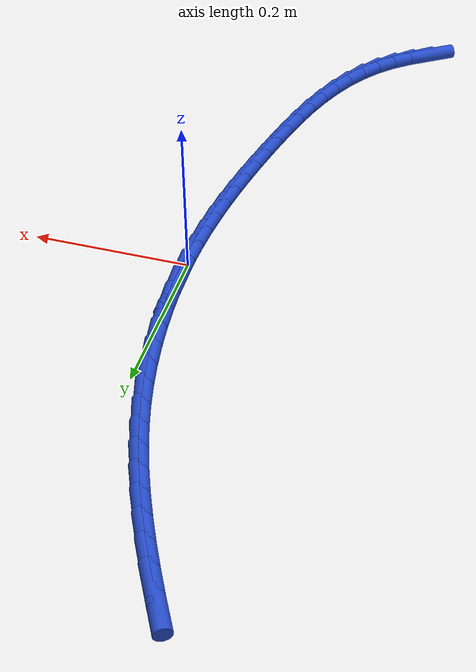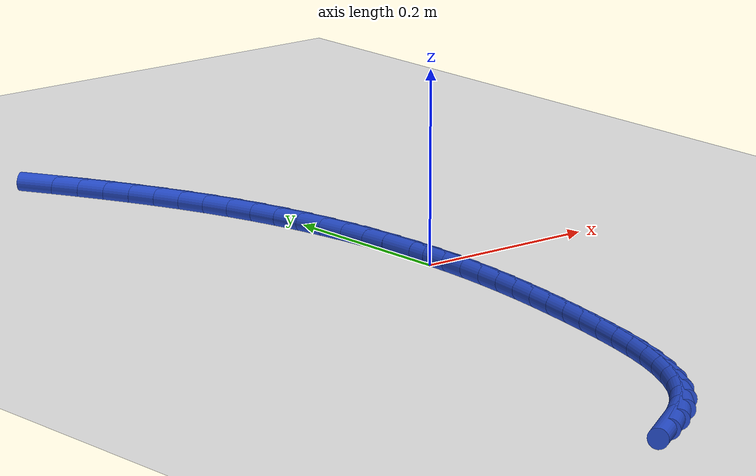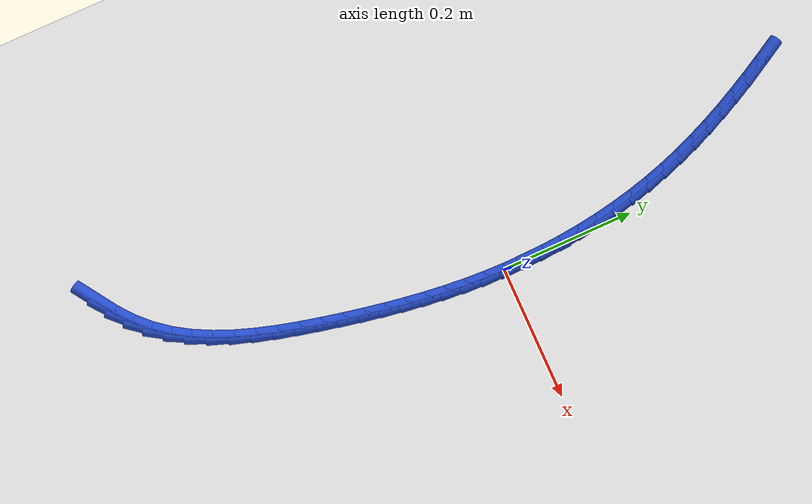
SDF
<sdf version="1.6">
 <world name="default">
  <model name="ground_plane">
   <static>1</static>
   <link name="link">
    <collision name="collision">
     <geometry><plane><normal>0 0 1</normal><size>100 100</size></plane></geometry>
     <surface><friction><ode><mu>100</mu><mu2>50</mu2></ode></friction></surface>
    </collision>
    <visual name="visual">
     <cast_shadows>0</cast_shadows>
     <geometry><plane><normal>0 0 1</normal><size>100 100</size></plane></geometry>
     <material>
      <script><uri>file://media/materials/scripts/gazebo.material</uri><name>Gazebo/WhiteGlow</name></script>
     </material>
    </visual>
   </link>
  </model>
  <model name="line">
   <link name="link_0">
    <pose>4.336808689942018e-18 2.0816681711721685e-17 0.01 0 1.57 -1.569869605199208</pose>
    <collision name="collision">
     <geometry><cylinder><radius>0.01</radius><length>0.08</length></cylinder></geometry>
    </collision>
    <visual name="visual">
     <material>
      <script><name>Gazebo/Blue</name><uri>file://media/materials/scripts/gazebo.material</uri></script>
     </material>
     <geometry><cylinder><radius>0.01</radius><length>0.08</length></cylinder></geometry>
    </visual>
   </link>
   <link name="link_1">
    <pose>-2.8199256187058857e-05 0.03042903957955117 0.01 0 1.57 -1.536904389241077</pose>
    <collision name="collision">
     <geometry><cylinder><radius>0.01</radius><length>0.08</length></cylinder></geometry>
    </collision>
    <visual name="visual">
     <material>
      <script><name>Gazebo/Blue</name><uri>file://media/materials/scripts/gazebo.material</uri></script>
     </material>
     <geometry><cylinder><radius>0.01</radius><length>0.08</length></cylinder></geometry>
    </visual>
   </link>
   <link name="link_2">
    <pose>-0.001064233398030973 0.06098608356603939 0.01 0 1.57 -1.5035891266264223</pose>
    <collision name="collision">
     <geometry><cylinder><radius>0.01</radius><length>0.08</length></cylinder></geometry>
    </collision>
    <visual name="visual">
     <material>
      <script><name>Gazebo/Blue</name><uri>file://media/materials/scripts/gazebo.material</uri></script>
     </material>
     <geometry><cylinder><radius>0.01</radius><length>0.08</length></cylinder></geometry>
    </visual>
   </link>
   <link name="link_3">
    <pose>-0.003123707860153108 0.09158359057112793 0.01 0 1.57 -1.4697188301909914</pose>
    <collision name="collision">
     <geometry><cylinder><radius>0.01</radius><length>0.08</length></cylinder></geometry>
    </collision>
    <visual name="visual">
     <material>
      <script><name>Gazebo/Blue</name><uri>file://media/materials/scripts/gazebo.material</uri></script>
     </material>
     <geometry><cylinder><radius>0.01</radius><length>0.08</length></cylinder></geometry>
    </visual>
   </link>
   <link name="link_4">
    <pose>-0.006222228077174839 0.12213401920648005 0.01 0 1.57 -1.4350891189731654</pose>
    <collision name="collision">
     <geometry><cylinder><radius>0.01</radius><length>0.08</length></cylinder></geometry>
    </collision>
    <visual name="visual">
     <material>
      <script><name>Gazebo/Blue</name><uri>file://media/materials/scripts/gazebo.material</uri></script>
     </material>
     <geometry><cylinder><radius>0.01</radius><length>0.08</length></cylinder></geometry>
    </visual>
   </link>
   <link name="link_5">
    <pose>-0.010375399483717532 0.15254982808375903 0.01 0 1.57 -1.3994942355185533</pose>
    <collision name="collision">
     <geometry><cylinder><radius>0.01</radius><length>0.08</length></cylinder></geometry>
    </collision>
    <visual name="visual">
     <material>
      <script><name>Gazebo/Blue</name><uri>file://media/materials/scripts/gazebo.material</uri></script>
     </material>
     <geometry><cylinder><radius>0.01</radius><length>0.08</length></cylinder></geometry>
    </visual>
   </link>
   <link name="link_6">
    <pose>-0.015598827514402558 0.18274347581462813 0.01 0 1.57 -1.3627255431534695</pose>
    <collision name="collision">
     <geometry><cylinder><radius>0.01</radius><length>0.08</length></cylinder></geometry>
    </collision>
    <visual name="visual">
     <material>
      <script><name>Gazebo/Blue</name><uri>file://media/materials/scripts/gazebo.material</uri></script>
     </material>
     <geometry><cylinder><radius>0.01</radius><length>0.08</length></cylinder></geometry>
    </visual>
   </link>
   <link name="link_7">
    <pose>-0.021908117603851286 0.2126274210107506 0.01 0 1.57 -1.324570599079978</pose>
    <collision name="collision">
     <geometry><cylinder><radius>0.01</radius><length>0.08</length></cylinder></geometry>
    </collision>
    <visual name="visual">
     <material>
      <script><name>Gazebo/Blue</name><uri>file://media/materials/scripts/gazebo.material</uri></script>
     </material>
     <geometry><cylinder><radius>0.01</radius><length>0.08</length></cylinder></geometry>
    </visual>
   </link>
   <link name="link_8">
    <pose>-0.029318875186685085 0.2421141222837896 0.01 0 1.57 -1.2848718118222824</pose>
    <collision name="collision">
     <geometry><cylinder><radius>0.01</radius><length>0.08</length></cylinder></geometry>
    </collision>
    <visual name="visual">
     <material>
      <script><name>Gazebo/Blue</name><uri>file://media/materials/scripts/gazebo.material</uri></script>
     </material>
     <geometry><cylinder><radius>0.01</radius><length>0.08</length></cylinder></geometry>
    </visual>
   </link>
   <link name="link_9">
    <pose>-0.03784538438092388 0.27111785237308156 0.01 0 1.57 -1.2454574519196293</pose>
    <collision name="collision">
     <geometry><cylinder><radius>0.01</radius><length>0.08</length></cylinder></geometry>
    </collision>
    <visual name="visual">
     <material>
      <script><name>Gazebo/Blue</name><uri>file://media/materials/scripts/gazebo.material</uri></script>
     </material>
     <geometry><cylinder><radius>0.01</radius><length>0.08</length></cylinder></geometry>
    </visual>
   </link>
   <link name="link_10">
    <pose>-0.04745771358151395 0.29961359086651795 0.01 0 1.57 -1.208871732727496</pose>
    <collision name="collision">
     <geometry><cylinder><radius>0.01</radius><length>0.08</length></cylinder></geometry>
    </collision>
    <visual name="visual">
     <material>
      <script><name>Gazebo/Blue</name><uri>file://media/materials/scripts/gazebo.material</uri></script>
     </material>
     <geometry><cylinder><radius>0.01</radius><length>0.08</length></cylinder></geometry>
    </visual>
   </link>
   <link name="link_11">
    <pose>-0.0580723182726139 0.3276499262546498 0.01 0 1.57 -1.1754614668483574</pose>
    <collision name="collision">
     <geometry><cylinder><radius>0.01</radius><length>0.08</length></cylinder></geometry>
    </collision>
    <visual name="visual">
     <material>
      <script><name>Gazebo/Blue</name><uri>file://media/materials/scripts/gazebo.material</uri></script>
     </material>
     <geometry><cylinder><radius>0.01</radius><length>0.08</length></cylinder></geometry>
    </visual>
   </link>
   <link name="link_12">
    <pose>-0.0696024312775198 0.3552798716437836 0.01 0 1.57 -1.1453722685918644</pose>
    <collision name="collision">
     <geometry><cylinder><radius>0.01</radius><length>0.08</length></cylinder></geometry>
    </collision>
    <visual name="visual">
     <material>
      <script><name>Gazebo/Blue</name><uri>file://media/materials/scripts/gazebo.material</uri></script>
     </material>
     <geometry><cylinder><radius>0.01</radius><length>0.08</length></cylinder></geometry>
    </visual>
   </link>
   <link name="link_13">
    <pose>-0.08196128541952764 0.38255644014022533 0.01 0 1.57 -1.118699451016616</pose>
    <collision name="collision">
     <geometry><cylinder><radius>0.01</radius><length>0.08</length></cylinder></geometry>
    </collision>
    <visual name="visual">
     <material>
      <script><name>Gazebo/Blue</name><uri>file://media/materials/scripts/gazebo.material</uri></script>
     </material>
     <geometry><cylinder><radius>0.01</radius><length>0.08</length></cylinder></geometry>
    </visual>
   </link>
   <link name="link_14">
    <pose>-0.09506211352193349 0.4095326448502814 0.01 0 1.57 -1.0954966320516033</pose>
    <collision name="collision">
     <geometry><cylinder><radius>0.01</radius><length>0.08</length></cylinder></geometry>
    </collision>
    <visual name="visual">
     <material>
      <script><name>Gazebo/Blue</name><uri>file://media/materials/scripts/gazebo.material</uri></script>
     </material>
     <geometry><cylinder><radius>0.01</radius><length>0.08</length></cylinder></geometry>
    </visual>
   </link>
   <link name="link_15">
    <pose>-0.10881814840803339 0.43626149888025795 0.01 0 1.57 -1.075784581439223</pose>
    <collision name="collision">
     <geometry><cylinder><radius>0.01</radius><length>0.08</length></cylinder></geometry>
    </collision>
    <visual name="visual">
     <material>
      <script><name>Gazebo/Blue</name><uri>file://media/materials/scripts/gazebo.material</uri></script>
     </material>
     <geometry><cylinder><radius>0.01</radius><length>0.08</length></cylinder></geometry>
    </visual>
   </link>
   <link name="link_16">
    <pose>-0.12314262290112332 0.46279601533646125 0.01 0 1.57 -1.0595595638065634</pose>
    <collision name="collision">
     <geometry><cylinder><radius>0.01</radius><length>0.08</length></cylinder></geometry>
    </collision>
    <visual name="visual">
     <material>
      <script><name>Gazebo/Blue</name><uri>file://media/materials/scripts/gazebo.material</uri></script>
     </material>
     <geometry><cylinder><radius>0.01</radius><length>0.08</length></cylinder></geometry>
    </visual>
   </link>
   <link name="link_220">
    <pose>-0.19854028373378463 -0.5520116183788545 0.01 0 1.57 0.5903861471306634</pose>
    <collision name="collision">
     <geometry><cylinder><radius>0.01</radius><length>0.08</length></cylinder></geometry>
    </collision>
    <visual name="visual">
     <material>
      <script><name>Gazebo/Blue</name><uri>file://media/materials/scripts/gazebo.material</uri></script>
     </material>
     <geometry><cylinder><radius>0.01</radius><length>0.08</length></cylinder></geometry>
    </visual>
   </link>
   <link name="link_221">
    <pose>-0.17405270044381196 -0.5356021203010456 0.01 0 1.57 0.6804696386055116</pose>
    <collision name="collision">
     <geometry><cylinder><radius>0.01</radius><length>0.08</length></cylinder></geometry>
    </collision>
    <visual name="visual">
     <material>
      <script><name>Gazebo/Blue</name><uri>file://media/materials/scripts/gazebo.material</uri></script>
     </material>
     <geometry><cylinder><radius>0.01</radius><length>0.08</length></cylinder></geometry>
    </visual>
   </link>
   <link name="link_222">
    <pose>-0.15147286623293843 -0.5173251349465278 0.01 0 1.57 0.7892257689529848</pose>
    <collision name="collision">
     <geometry><cylinder><radius>0.01</radius><length>0.08</length></cylinder></geometry>
    </collision>
    <visual name="visual">
     <material>
      <script><name>Gazebo/Blue</name><uri>file://media/materials/scripts/gazebo.material</uri></script>
     </material>
     <geometry><cylinder><radius>0.01</radius><length>0.08</length></cylinder></geometry>
    </visual>
   </link>
   <link name="link_223">
    <pose>-0.13112597862900627 -0.49682188837851154 0.01 0 1.57 0.9068637256477821</pose>
    <collision name="collision">
     <geometry><cylinder><radius>0.01</radius><length>0.08</length></cylinder></geometry>
    </collision>
    <visual name="visual">
     <material>
      <script><name>Gazebo/Blue</name><uri>file://media/materials/scripts/gazebo.material</uri></script>
     </material>
     <geometry><cylinder><radius>0.01</radius><length>0.08</length></cylinder></geometry>
    </visual>
   </link>
   <link name="link_224">
    <pose>-0.11319645212986722 -0.4739065765819012 0.01 0 1.57 1.011439094767299</pose>
    <collision name="collision">
     <geometry><cylinder><radius>0.01</radius><length>0.08</length></cylinder></geometry>
    </collision>
    <visual name="visual">
     <material>
      <script><name>Gazebo/Blue</name><uri>file://media/materials/scripts/gazebo.material</uri></script>
     </material>
     <geometry><cylinder><radius>0.01</radius><length>0.08</length></cylinder></geometry>
    </visual>
   </link>
   <link name="link_225">
    <pose>-0.09750418915674965 -0.4488412451535369 0.01 0 1.57 1.0996648299273208</pose>
    <collision name="collision">
     <geometry><cylinder><radius>0.01</radius><length>0.08</length></cylinder></geometry>
    </collision>
    <visual name="visual">
     <material>
      <script><name>Gazebo/Blue</name><uri>file://media/materials/scripts/gazebo.material</uri></script>
     </material>
     <geometry><cylinder><radius>0.01</radius><length>0.08</length></cylinder></geometry>
    </visual>
   </link>
   <link name="link_226">
    <pose>-0.08381087529156639 -0.4219594665080741 0.01 0 1.57 1.1725833489516615</pose>
    <collision name="collision">
     <geometry><cylinder><radius>0.01</radius><length>0.08</length></cylinder></geometry>
    </collision>
    <visual name="visual">
     <material>
      <script><name>Gazebo/Blue</name><uri>file://media/materials/scripts/gazebo.material</uri></script>
     </material>
     <geometry><cylinder><radius>0.01</radius><length>0.08</length></cylinder></geometry>
    </visual>
   </link>
   <link name="link_227">
    <pose>-0.07187819611623045 -0.3935948130601686 0.01 0 1.57 1.2316944847017588</pose>
    <collision name="collision">
     <geometry><cylinder><radius>0.01</radius><length>0.08</length></cylinder></geometry>
    </collision>
    <visual name="visual">
     <material>
      <script><name>Gazebo/Blue</name><uri>file://media/materials/scripts/gazebo.material</uri></script>
     </material>
     <geometry><cylinder><radius>0.01</radius><length>0.08</length></cylinder></geometry>
    </visual>
   </link>
   <link name="link_228">
    <pose>-0.06146783721265465 -0.3640808572244759 0.01 0 1.57 1.2785094960331265</pose>
    <collision name="collision">
     <geometry><cylinder><radius>0.01</radius><length>0.08</length></cylinder></geometry>
    </collision>
    <visual name="visual">
     <material>
      <script><name>Gazebo/Blue</name><uri>file://media/materials/scripts/gazebo.material</uri></script>
     </material>
     <geometry><cylinder><radius>0.01</radius><length>0.08</length></cylinder></geometry>
    </visual>
   </link>
   <link name="link_229">
    <pose>-0.05234148416275195 -0.33375117141565164 0.01 0 1.57 1.3143141301974541</pose>
    <collision name="collision">
     <geometry><cylinder><radius>0.01</radius><length>0.08</length></cylinder></geometry>
    </collision>
    <visual name="visual">
     <material>
      <script><name>Gazebo/Blue</name><uri>file://media/materials/scripts/gazebo.material</uri></script>
     </material>
     <geometry><cylinder><radius>0.01</radius><length>0.08</length></cylinder></geometry>
    </visual>
   </link>
   <link name="link_230">
    <pose>-0.044260822548435025 -0.3029393280483505 0.01 0 1.57 1.340058321982882</pose>
    <collision name="collision">
     <geometry><cylinder><radius>0.01</radius><length>0.08</length></cylinder></geometry>
    </collision>
    <visual name="visual">
     <material>
      <script><name>Gazebo/Blue</name><uri>file://media/materials/scripts/gazebo.material</uri></script>
     </material>
     <geometry><cylinder><radius>0.01</radius><length>0.08</length></cylinder></geometry>
    </visual>
   </link>
   <link name="link_231">
    <pose>-0.03698753795161723 -0.27197889953723 0.01 0 1.57 1.3566809350859088</pose>
    <collision name="collision">
     <geometry><cylinder><radius>0.01</radius><length>0.08</length></cylinder></geometry>
    </collision>
    <visual name="visual">
     <material>
      <script><name>Gazebo/Blue</name><uri>file://media/materials/scripts/gazebo.material</uri></script>
     </material>
     <geometry><cylinder><radius>0.01</radius><length>0.08</length></cylinder></geometry>
    </visual>
   </link>
   <link name="link_232">
    <pose>-0.030292744704685553 -0.24119096487474803 0.01 0 1.57 1.3706317737580938</pose>
    <collision name="collision">
     <geometry><cylinder><radius>0.01</radius><length>0.08</length></cylinder></geometry>
    </collision>
    <visual name="visual">
     <material>
      <script><name>Gazebo/Blue</name><uri>file://media/materials/scripts/gazebo.material</uri></script>
     </material>
     <geometry><cylinder><radius>0.01</radius><length>0.08</length></cylinder></geometry>
    </visual>
   </link>
   <link name="link_233">
    <pose>-0.024104415953155385 -0.2106887596723132 0.01 0 1.57 1.387107246042277</pose>
    <collision name="collision">
     <geometry><cylinder><radius>0.01</radius><length>0.08</length></cylinder></geometry>
    </collision>
    <visual name="visual">
     <material>
      <script><name>Gazebo/Blue</name><uri>file://media/materials/scripts/gazebo.material</uri></script>
     </material>
     <geometry><cylinder><radius>0.01</radius><length>0.08</length></cylinder></geometry>
    </visual>
   </link>
   <link name="link_234">
    <pose>-0.018479889686588813 -0.1804141066252245 0.01 0 1.57 1.4062577960755378</pose>
    <collision name="collision">
     <geometry><cylinder><radius>0.01</radius><length>0.08</length></cylinder></geometry>
    </collision>
    <visual name="visual">
     <material>
      <script><name>Gazebo/Blue</name><uri>file://media/materials/scripts/gazebo.material</uri></script>
     </material>
     <geometry><cylinder><radius>0.01</radius><length>0.08</length></cylinder></geometry>
    </visual>
   </link>
   <link name="link_235">
    <pose>-0.013480369757281832 -0.15030370602625048 0.01 0 1.57 1.4280422857599195</pose>
    <collision name="collision">
     <geometry><cylinder><radius>0.01</radius><length>0.08</length></cylinder></geometry>
    </collision>
    <visual name="visual">
     <material>
      <script><name>Gazebo/Blue</name><uri>file://media/materials/scripts/gazebo.material</uri></script>
     </material>
     <geometry><cylinder><radius>0.01</radius><length>0.08</length></cylinder></geometry>
    </visual>
   </link>
   <link name="link_236">
    <pose>-0.00916706001753041 -0.12029425816815974 0.01 0 1.57 1.4523779261516023</pose>
    <collision name="collision">
     <geometry><cylinder><radius>0.01</radius><length>0.08</length></cylinder></geometry>
    </collision>
    <visual name="visual">
     <material>
      <script><name>Gazebo/Blue</name><uri>file://media/materials/scripts/gazebo.material</uri></script>
     </material>
     <geometry><cylinder><radius>0.01</radius><length>0.08</length></cylinder></geometry>
    </visual>
   </link>
   <link name="link_237">
    <pose>-0.005601164319630539 -0.09032246334372082 0.01 0 1.57 1.4791367849255574</pose>
    <collision name="collision">
     <geometry><cylinder><radius>0.01</radius><length>0.08</length></cylinder></geometry>
    </collision>
    <visual name="visual">
     <material>
      <script><name>Gazebo/Blue</name><uri>file://media/materials/scripts/gazebo.material</uri></script>
     </material>
     <geometry><cylinder><radius>0.01</radius><length>0.08</length></cylinder></geometry>
    </visual>
   </link>
   <link name="link_238">
    <pose>-0.0028438865158781365 -0.06032502184570154 0.01 0 1.57 1.5081438811190953</pose>
    <collision name="collision">
     <geometry><cylinder><radius>0.01</radius><length>0.08</length></cylinder></geometry>
    </collision>
    <visual name="visual">
     <material>
      <script><name>Gazebo/Blue</name><uri>file://media/materials/scripts/gazebo.material</uri></script>
     </material>
     <geometry><cylinder><radius>0.01</radius><length>0.08</length></cylinder></geometry>
    </visual>
   </link>
   <link name="link_239">
    <pose>-0.0009564304585693247 -0.030238633966872052 0.01 0 1.57 1.539177447886412</pose>
    <collision name="collision">
     <geometry><cylinder><radius>0.01</radius><length>0.08</length></cylinder></geometry>
    </collision>
    <visual name="visual">
     <material>
      <script><name>Gazebo/Blue</name><uri>file://media/materials/scripts/gazebo.material</uri></script>
     </material>
     <geometry><cylinder><radius>0.01</radius><length>0.08</length></cylinder></geometry>
    </visual>
   </link>
   <link name="link_240">
    <pose>-7.806255641895632e-18 -1.8041124150158794e-16 0.01 0 1.57 -1.5696208239162555</pose>
    <collision name="collision">
     <geometry><cylinder><radius>0.01</radius><length>0.08</length></cylinder></geometry>
    </collision>
    <visual name="visual">
     <material>
      <script><name>Gazebo/Blue</name><uri>file://media/materials/scripts/gazebo.material</uri></script>
     </material>
     <geometry><cylinder><radius>0.01</radius><length>0.08</length></cylinder></geometry>
    </visual>
   </link>
   <link name="link_241">
    <pose>-3.5798992466164886e-05 0.030454179762145525 0.01 0 1.57 -1.5353694021173199</pose>
    <collision name="collision">
     <geometry><cylinder><radius>0.01</radius><length>0.08</length></cylinder></geometry>
    </collision>
    <visual name="visual">
     <material>
      <script><name>Gazebo/Blue</name><uri>file://media/materials/scripts/gazebo.material</uri></script>
     </material>
     <geometry><cylinder><radius>0.01</radius><length>0.08</length></cylinder></geometry>
    </visual>
   </link>
   <link name="link_242">
    <pose>-0.0011250312882637777 0.06118720502679648 0.01 0 1.57 -1.552411690116114</pose>
    <collision name="collision">
     <geometry><cylinder><radius>0.01</radius><length>0.08</length></cylinder></geometry>
    </collision>
    <visual name="visual">
     <material>
      <script><name>Gazebo/Blue</name><uri>file://media/materials/scripts/gazebo.material</uri></script>
     </material>
     <geometry><cylinder><radius>0.01</radius><length>0.08</length></cylinder></geometry>
    </visual>
   </link>
  </model>
 </world>
</sdf>
